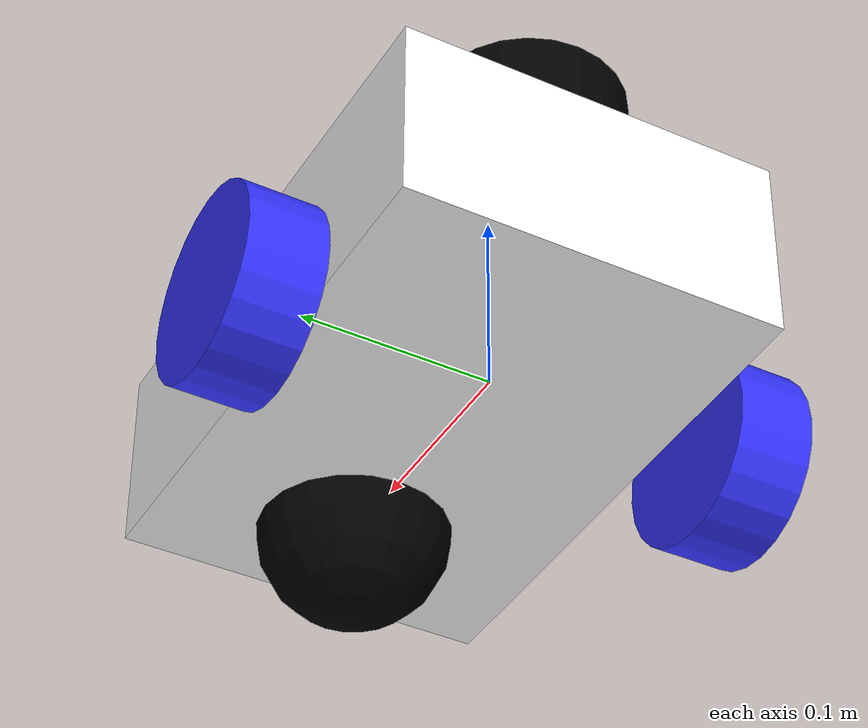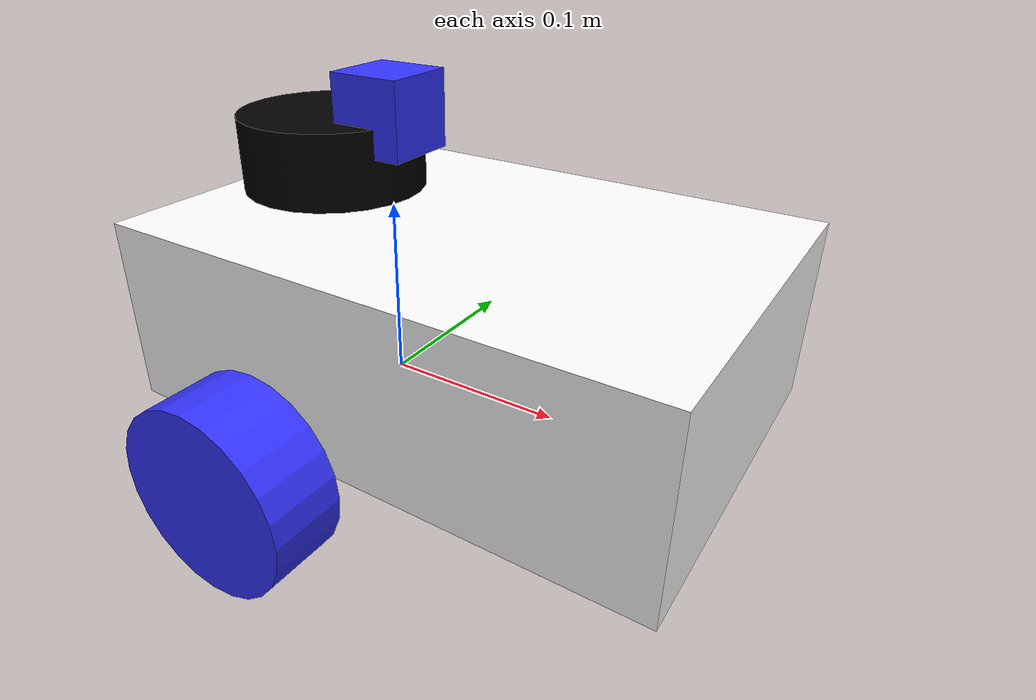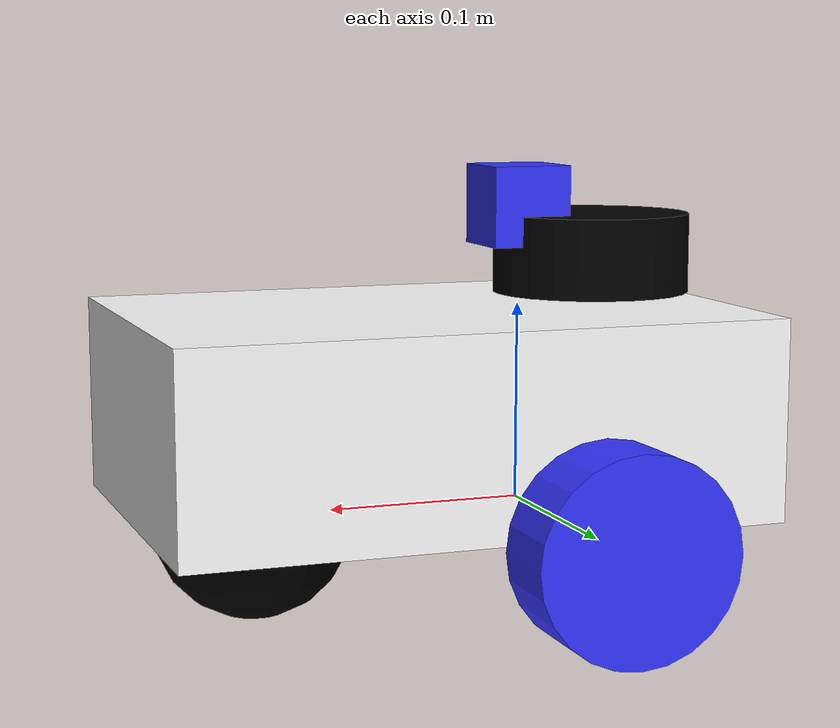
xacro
<?xml  version ="1.0" ?>
<robot  name="my_robot" xmlns:xacro="http://www.ros.org/wiki/xacro">

     <xacro:include filename="robot.xacro" />

     <!--Inclure le lidar -->
     <xacro:include filename="lidar.xacro"/>

     <!--Control robot-->

     <xacro:include filename = "controle_gazebo.xacro"/>
<!-- camera -->
     <xacro:include filename='camera.xacro' />

     <xacro:include filename='imu.xacro'/>

</robot>

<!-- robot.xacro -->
<robot xmlns:xacro="http://www.ros.org/wiki/xacro">

    <!-- Inclusion des macros d'inertie -->
    <xacro:include filename="inertial.xacro"/>

    <!-- Dimensions du châssis -->
    <xacro:property name="chassis_length" value="0.3"/>
    <xacro:property name="chassis_width" value="0.2"/>
    <xacro:property name="chassis_height" value="0.1"/>

    <!-- Matériaux -->
    <material name="white">
        <color rgba="1 1 1 1"/>
    </material>

    <material name="orange">
        <color rgba="1 0.3 0.1 1"/>
    </material>

    <material name="blue">
        <color rgba="0.2 0.2 1 1"/>
    </material>

    <material name="black">
        <color rgba="0 0 0 1"/>
    </material>

    <material name="red">
        <color rgba="1 0 0 1"/>
    </material>

    <!-- Chassis -->
    <link name="chassis">
        <visual>
            <origin xyz="${chassis_length/2} 0 ${chassis_height/2}"/>
            <geometry>
                <box size="${chassis_length} ${chassis_width} ${chassis_height}"/>
            </geometry>
            <material name="white"/>
        </visual>

        <collision>
            <origin xyz="${chassis_length/2} 0 ${chassis_height/2}"/>
            <geometry>
                <box size="${chassis_length} ${chassis_width} ${chassis_height}"/>
            </geometry>
        </collision>

        <xacro:inertial_box mass="0.5" x="${chassis_length}" y="${chassis_width}" z="${chassis_height}">
            <origin xyz="${chassis_length/2} 0 ${chassis_height/2}" rpy="0 0 0"/>
        </xacro:inertial_box>
    </link>

    <!-- Base link -->

    <link name="base_link"/>

    <joint name="base_link_to_chassis" type="fixed">
        <parent link="base_link"/>
        <child link="chassis"/>
        <origin xyz="-0.1 0 0" rpy="0 0 0"/>
    </joint>

    <gazebo reference="chassis">
        <material>Gazebo/White</material>

    </gazebo>

    <!-- Roue gauche -->
    <link name="wheel_left">

        <visual>
            <origin xyz="0 0 0" rpy="0 0 0"/>
            <geometry>
                <cylinder length="0.04" radius="0.05"/>
            </geometry>
            <material name="blue"/>
        </visual>

        <collision>
            <origin xyz="0 0 0" rpy="0 0 0"/>
            <geometry>
                <cylinder length="0.04" radius="0.05"/>
            </geometry>
        </collision>

        <xacro:inertial_cylinder mass="0.1" length="0.04" radius="0.05">
            <origin xyz="0 0 0" rpy="0 0 0"/>
        </xacro:inertial_cylinder>

    </link>

    <gazebo reference="wheel_left">
        <material>Gazebo/Blue</material>
        <mu1>0.2</mu1>
        <mu2>0.2</mu2>
        <kp>1000000.0</kp>
        <kd>100.0</kd>
        <minDepth>0.0001</minDepth>
        <maxVel>1.0</maxVel>
    </gazebo>

    <joint name="wheel_left_joint" type="continuous">
        <parent link="base_link"/>
        <child link="wheel_left"/>
        <origin xyz="0 ${chassis_width/2 + 0.03} 0" rpy="-1.57 0 0"/>
        <axis xyz="0 0 1"/>
    </joint>

    <!-- Roue droite -->
    <link name="wheel_right">
        <visual>
            <origin xyz="0 0 0" rpy="0 0 0"/>
            <geometry>
                <cylinder length="0.04" radius="0.05"/>
            </geometry>
            <material name="blue"/>
        </visual>

        <collision>
            <origin xyz="0 0 0" rpy="0 0 0"/>
            <geometry>
                <cylinder length="0.04" radius="0.05"/>
            </geometry>
        </collision>

        <xacro:inertial_cylinder mass="0.1" length="0.04" radius="0.05">
            <origin xyz="0 0 0" rpy="0 0 0"/>
        </xacro:inertial_cylinder>
    </link>

    <gazebo reference="wheel_right">
        <material>Gazebo/Blue</material>
        <mu1>0.2</mu1>
        <mu2>0.2</mu2>
        <kp>1000000.0</kp>
        <kd>100.0</kd>
        <minDepth>0.0001</minDepth>
        <maxVel>1.0</maxVel>
    </gazebo>

    <joint name="wheel_right_joint" type="continuous">
        <parent link="base_link"/>
        <child link="wheel_right"/>
        <origin xyz="0 -${chassis_width/2 + 0.03} 0" rpy="1.57 0 0"/>
        <axis xyz="0 0 -1"/>
    </joint>

    <!-- Roue folle (caster) -->
    <link name="caster_wheel">
        <visual>
            <geometry>
                <sphere radius="0.05"/>
            </geometry>
            <origin xyz="0 0 0" rpy="0 0 0"/>
            <material name="black"/>
        </visual>

        <collision>
            <geometry>
                <sphere radius="0.05"/>
            </geometry>
            <origin xyz="0 0 0" rpy="0 0 0"/>
            <material name="black"/>
        </collision>

        <xacro:inertial_sphere mass="0.1" radius="0.05">
            <origin xyz="0 0 0" rpy="0 0 0"/>
        </xacro:inertial_sphere>
    </link>

    <joint name="caster_wheel_joint" type="fixed">
        <parent link="chassis"/>
        <child link="caster_wheel"/>
        <origin xyz="0.24 0 0" rpy="0 0 0"/>
    </joint>

    <gazebo reference="caster_wheel">
        <material>Gazebo/Black</material>
        <mu1 value="0.001"/>
        <mu2 value="0.001"/>
    </gazebo>

</robot>

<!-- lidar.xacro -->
<robot xmlns:xacro="http://www.ros.org/wiki/xacro">

    <joint name="laser_joint" type="fixed">
        <parent link="chassis"/>
        <child link="laser_frame"/>
        <origin xyz="0.06 0 0.125" rpy="0 0 0"/>
    </joint>

    <link name="laser_frame">
        <visual>
            <geometry>
                <cylinder radius="0.05" length="0.04"/>
            </geometry>
            <material name="black"/>
        </visual>

        <collision>
            <geometry>
                <cylinder radius="0.05" length="0.04"/>
            </geometry>
        </collision>

        <xacro:inertial_cylinder mass="0.1" length="0.04" radius="0.05">
            <origin xyz="0 0 0" rpy="0 0 0"/>
        </xacro:inertial_cylinder>
    </link>

     <gazebo reference="laser_frame">
            <sensor type="gpu_lidar" name="lidar">
                <pose>0 0 0 0 0 0</pose>
                <always_on>true</always_on>
                <visualize>true</visualize>
                <update_rate>10</update_rate>
                <lidar>
                    <scan>
                        <horizontal>
                            <samples>360</samples>
                            <resolution>1</resolution>
                            <min_angle>-3.14159</min_angle>
                            <max_angle>3.14159</max_angle>
                        </horizontal>
                    </scan>
                    <range>
                        <min>0.2</min>
                        <max>30.0</max>
                        <resolution>0.01</resolution>
                    </range>
                    <noise>
                        <type>gaussian</type>
                        <mean>0.0</mean>
                        <stddev>0.01</stddev>
                    </noise>
                </lidar>
                <topic>scan</topic>
                <gz_frame_id>laser_frame</gz_frame_id>
            </sensor>
    </gazebo>

</robot>

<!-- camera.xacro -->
<robot xmlns:xacro="http://www.ros.org/wiki/xacro">

  <!-- Le lien de la caméra -->
  <link name="camera_link">
    <visual>
      <origin xyz="0 0 0" rpy="0 0 0"/>
      <geometry>
        <box size="0.04 0.04 0.04"/>
      </geometry>
      <material name="blue"/>
    </visual>
    <collision>
      <origin xyz="0 0 0" rpy="0 0 0"/>
      <geometry>
        <box size="0.04 0.04 0.04"/>
      </geometry>
    </collision>
    <xacro:inertial_box mass='0.05'  x=' 0.04' y='0.04' z='0.04'>
      <origin xyz="0 0 0" rpy="0 0 0"/>

    </xacro:inertial_box>
  </link>

  <!-- Joint qui relie la caméra au châssis -->
  <joint name="camera_joint" type="fixed">
    <parent link="chassis"/>
    <child link="camera_link"/>
    <origin xyz="0.1 0 0.15" rpy="0 0 0"/>
  </joint>

  <!-- Plugin Gazebo pour simuler la caméra -->
  <gazebo reference="camera_link">
    <sensor name="camera_sensor" type="camera">
      <always_on>true</always_on>
      <update_rate>30</update_rate>
      <visualize>true</visualize>
      <camera>
        <horizontal_fov>1.3962634</horizontal_fov>
        <image>
          <width>640</width>
          <height>480</height>
          <format>R8G8B8</format>
        </image>
        <clip>
          <near>0.05</near>
          <far>50.0</far>
        </clip>
      </camera>

      <!-- Plugin ROS-Gazebo -->
    </sensor>
  </gazebo>

</robot>

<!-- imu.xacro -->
<robot xmlns:xacro="http://www.ros.org/wiki/xacro">

    <joint name="imu_joint" type="fixed">
            <origin xyz="0 0 0" rpy="0 0 0" />
            <parent link="chassis"/>
            <child link="imu_link" />
    </joint>

    <link name="imu_link">
    </link>

  <!-- Le pluging de l'imu -->
    <gazebo reference= 'imu_link'>
        <sensor name=' imu' type='imu'>
            <always_on>1</always_on>

            <update_rate>50</update_rate>

            <visualize>true</visualize>

            <topic>imu</topic>

            <enable_metrics>true</enable_metrics>

            <gz_frame_id>imu_link</gz_frame_id>

        </sensor>

    </gazebo>

</robot>
